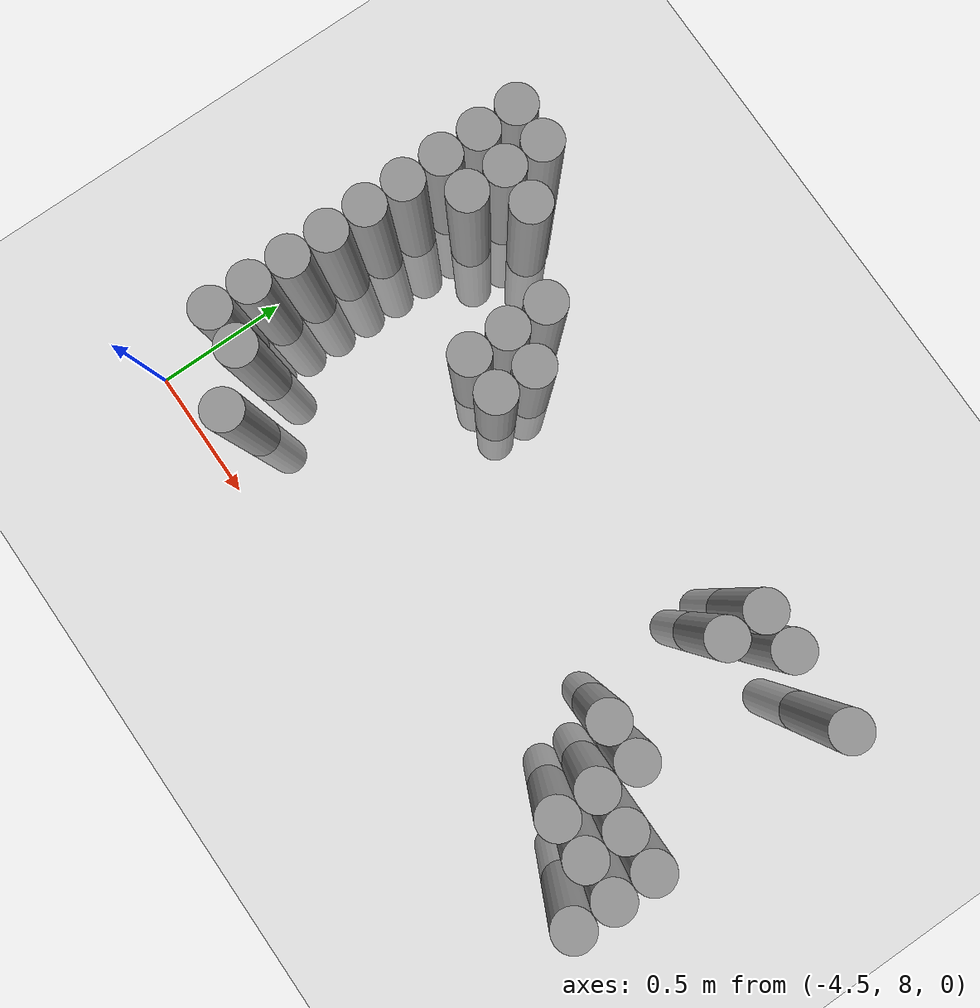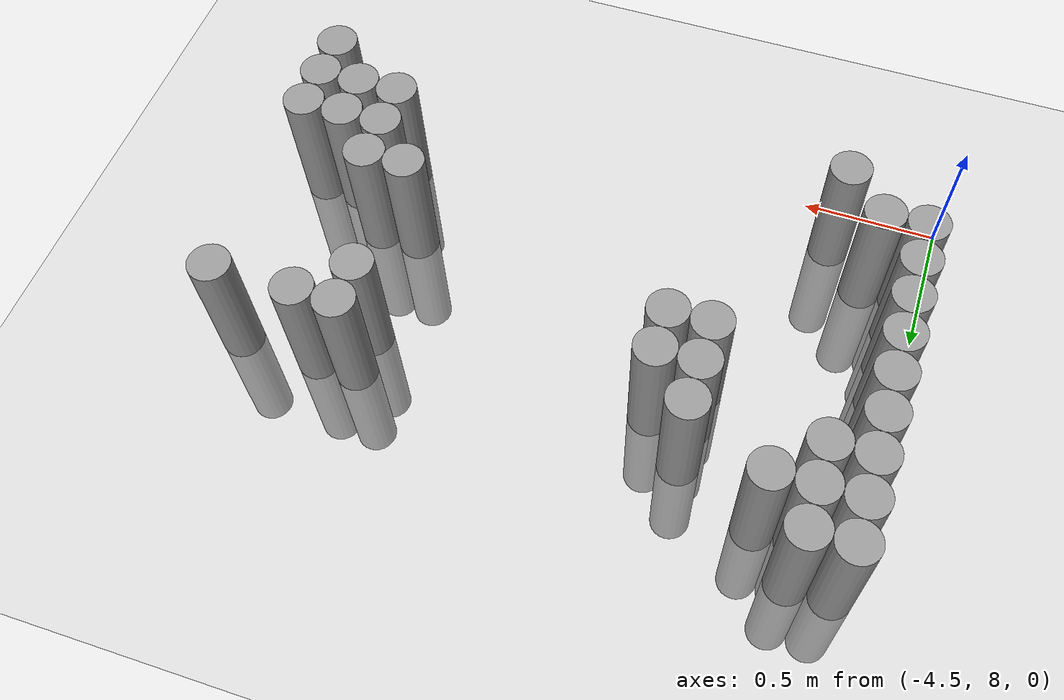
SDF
<sdf version="1.6">
 <world name="default">
  <model name="ground_plane">
   <static>1</static>
   <link name="link">
    <collision name="collision">
     <geometry><plane><normal>0 0 1</normal><size>100 100</size></plane></geometry>
     <surface><friction><ode><mu>100</mu><mu2>50</mu2></ode></friction></surface>
    </collision>
    <visual name="visual">
     <cast_shadows>0</cast_shadows>
     <geometry><plane><normal>0 0 1</normal><size>100 100</size></plane></geometry>
     <material>
      <script><uri>file://media/materials/scripts/gazebo.material</uri><name>Gazebo/Grey</name></script>
     </material>
    </visual>
   </link>
  </model>
  <model name="unit_cylinder_117">
   <pose>-4.425000 8.325000 0.000000 0.000000 0.000000 0.000000</pose>
   <link name="link">
    <inertial>
     <mass>1</mass>
     <inertia><ixx>0.145833</ixx><ixy>0</ixy><ixz>0</ixz><iyy>0.145833</iyy><iyz>0</iyz><izz>0.125</izz></inertia>
    </inertial>
    <collision name="collision">
     <geometry><cylinder><radius>0.075000</radius><length>1</length></cylinder></geometry>
    </collision>
    <visual name="visual">
     <geometry><cylinder><radius>0.075000</radius><length>1</length></cylinder></geometry>
     <material>
      <script><name>Gazebo/Grey</name><uri>file://media/materials/scripts/gazebo.material</uri></script>
     </material>
    </visual>
   </link>
  </model>
  <model name="unit_cylinder_118">
   <pose>-4.425000 8.475000 0.000000 0.000000 0.000000 0.000000</pose>
   <link name="link">
    <inertial>
     <mass>1</mass>
     <inertia><ixx>0.145833</ixx><ixy>0</ixy><ixz>0</ixz><iyy>0.145833</iyy><iyz>0</iyz><izz>0.125</izz></inertia>
    </inertial>
    <collision name="collision">
     <geometry><cylinder><radius>0.075000</radius><length>1</length></cylinder></geometry>
    </collision>
    <visual name="visual">
     <geometry><cylinder><radius>0.075000</radius><length>1</length></cylinder></geometry>
     <material>
      <script><name>Gazebo/Grey</name><uri>file://media/materials/scripts/gazebo.material</uri></script>
     </material>
    </visual>
   </link>
  </model>
  <model name="unit_cylinder_119">
   <pose>-4.425000 8.625000 0.000000 0.000000 0.000000 0.000000</pose>
   <link name="link">
    <inertial>
     <mass>1</mass>
     <inertia><ixx>0.145833</ixx><ixy>0</ixy><ixz>0</ixz><iyy>0.145833</iyy><iyz>0</iyz><izz>0.125</izz></inertia>
    </inertial>
    <collision name="collision">
     <geometry><cylinder><radius>0.075000</radius><length>1</length></cylinder></geometry>
    </collision>
    <visual name="visual">
     <geometry><cylinder><radius>0.075000</radius><length>1</length></cylinder></geometry>
     <material>
      <script><name>Gazebo/Grey</name><uri>file://media/materials/scripts/gazebo.material</uri></script>
     </material>
    </visual>
   </link>
  </model>
  <model name="unit_cylinder_120">
   <pose>-4.425000 8.775000 0.000000 0.000000 0.000000 0.000000</pose>
   <link name="link">
    <inertial>
     <mass>1</mass>
     <inertia><ixx>0.145833</ixx><ixy>0</ixy><ixz>0</ixz><iyy>0.145833</iyy><iyz>0</iyz><izz>0.125</izz></inertia>
    </inertial>
    <collision name="collision">
     <geometry><cylinder><radius>0.075000</radius><length>1</length></cylinder></geometry>
    </collision>
    <visual name="visual">
     <geometry><cylinder><radius>0.075000</radius><length>1</length></cylinder></geometry>
     <material>
      <script><name>Gazebo/Grey</name><uri>file://media/materials/scripts/gazebo.material</uri></script>
     </material>
    </visual>
   </link>
  </model>
  <model name="unit_cylinder_121">
   <pose>-4.425000 8.925000 0.000000 0.000000 0.000000 0.000000</pose>
   <link name="link">
    <inertial>
     <mass>1</mass>
     <inertia><ixx>0.145833</ixx><ixy>0</ixy><ixz>0</ixz><iyy>0.145833</iyy><iyz>0</iyz><izz>0.125</izz></inertia>
    </inertial>
    <collision name="collision">
     <geometry><cylinder><radius>0.075000</radius><length>1</length></cylinder></geometry>
    </collision>
    <visual name="visual">
     <geometry><cylinder><radius>0.075000</radius><length>1</length></cylinder></geometry>
     <material>
      <script><name>Gazebo/Grey</name><uri>file://media/materials/scripts/gazebo.material</uri></script>
     </material>
    </visual>
   </link>
  </model>
  <model name="unit_cylinder_122">
   <pose>-4.425000 9.075000 0.000000 0.000000 0.000000 0.000000</pose>
   <link name="link">
    <inertial>
     <mass>1</mass>
     <inertia><ixx>0.145833</ixx><ixy>0</ixy><ixz>0</ixz><iyy>0.145833</iyy><iyz>0</iyz><izz>0.125</izz></inertia>
    </inertial>
    <collision name="collision">
     <geometry><cylinder><radius>0.075000</radius><length>1</length></cylinder></geometry>
    </collision>
    <visual name="visual">
     <geometry><cylinder><radius>0.075000</radius><length>1</length></cylinder></geometry>
     <material>
      <script><name>Gazebo/Grey</name><uri>file://media/materials/scripts/gazebo.material</uri></script>
     </material>
    </visual>
   </link>
  </model>
  <model name="unit_cylinder_123">
   <pose>-4.425000 9.225000 0.000000 0.000000 0.000000 0.000000</pose>
   <link name="link">
    <inertial>
     <mass>1</mass>
     <inertia><ixx>0.145833</ixx><ixy>0</ixy><ixz>0</ixz><iyy>0.145833</iyy><iyz>0</iyz><izz>0.125</izz></inertia>
    </inertial>
    <collision name="collision">
     <geometry><cylinder><radius>0.075000</radius><length>1</length></cylinder></geometry>
    </collision>
    <visual name="visual">
     <geometry><cylinder><radius>0.075000</radius><length>1</length></cylinder></geometry>
     <material>
      <script><name>Gazebo/Grey</name><uri>file://media/materials/scripts/gazebo.material</uri></script>
     </material>
    </visual>
   </link>
  </model>
  <model name="unit_cylinder_124">
   <pose>-4.425000 9.375000 0.000000 0.000000 0.000000 0.000000</pose>
   <link name="link">
    <inertial>
     <mass>1</mass>
     <inertia><ixx>0.145833</ixx><ixy>0</ixy><ixz>0</ixz><iyy>0.145833</iyy><iyz>0</iyz><izz>0.125</izz></inertia>
    </inertial>
    <collision name="collision">
     <geometry><cylinder><radius>0.075000</radius><length>1</length></cylinder></geometry>
    </collision>
    <visual name="visual">
     <geometry><cylinder><radius>0.075000</radius><length>1</length></cylinder></geometry>
     <material>
      <script><name>Gazebo/Grey</name><uri>file://media/materials/scripts/gazebo.material</uri></script>
     </material>
    </visual>
   </link>
  </model>
  <model name="unit_cylinder_125">
   <pose>-4.425000 9.525000 0.000000 0.000000 0.000000 0.000000</pose>
   <link name="link">
    <inertial>
     <mass>1</mass>
     <inertia><ixx>0.145833</ixx><ixy>0</ixy><ixz>0</ixz><iyy>0.145833</iyy><iyz>0</iyz><izz>0.125</izz></inertia>
    </inertial>
    <collision name="collision">
     <geometry><cylinder><radius>0.075000</radius><length>1</length></cylinder></geometry>
    </collision>
    <visual name="visual">
     <geometry><cylinder><radius>0.075000</radius><length>1</length></cylinder></geometry>
     <material>
      <script><name>Gazebo/Grey</name><uri>file://media/materials/scripts/gazebo.material</uri></script>
     </material>
    </visual>
   </link>
  </model>
  <model name="unit_cylinder_136">
   <pose>-4.275000 8.325000 0.000000 0.000000 0.000000 0.000000</pose>
   <link name="link">
    <inertial>
     <mass>1</mass>
     <inertia><ixx>0.145833</ixx><ixy>0</ixy><ixz>0</ixz><iyy>0.145833</iyy><iyz>0</iyz><izz>0.125</izz></inertia>
    </inertial>
    <collision name="collision">
     <geometry><cylinder><radius>0.075000</radius><length>1</length></cylinder></geometry>
    </collision>
    <visual name="visual">
     <geometry><cylinder><radius>0.075000</radius><length>1</length></cylinder></geometry>
     <material>
      <script><name>Gazebo/Grey</name><uri>file://media/materials/scripts/gazebo.material</uri></script>
     </material>
    </visual>
   </link>
  </model>
  <model name="unit_cylinder_137">
   <pose>-4.275000 9.225000 0.000000 0.000000 0.000000 0.000000</pose>
   <link name="link">
    <inertial>
     <mass>1</mass>
     <inertia><ixx>0.145833</ixx><ixy>0</ixy><ixz>0</ixz><iyy>0.145833</iyy><iyz>0</iyz><izz>0.125</izz></inertia>
    </inertial>
    <collision name="collision">
     <geometry><cylinder><radius>0.075000</radius><length>1</length></cylinder></geometry>
    </collision>
    <visual name="visual">
     <geometry><cylinder><radius>0.075000</radius><length>1</length></cylinder></geometry>
     <material>
      <script><name>Gazebo/Grey</name><uri>file://media/materials/scripts/gazebo.material</uri></script>
     </material>
    </visual>
   </link>
  </model>
  <model name="unit_cylinder_138">
   <pose>-4.275000 9.375000 0.000000 0.000000 0.000000 0.000000</pose>
   <link name="link">
    <inertial>
     <mass>1</mass>
     <inertia><ixx>0.145833</ixx><ixy>0</ixy><ixz>0</ixz><iyy>0.145833</iyy><iyz>0</iyz><izz>0.125</izz></inertia>
    </inertial>
    <collision name="collision">
     <geometry><cylinder><radius>0.075000</radius><length>1</length></cylinder></geometry>
    </collision>
    <visual name="visual">
     <geometry><cylinder><radius>0.075000</radius><length>1</length></cylinder></geometry>
     <material>
      <script><name>Gazebo/Grey</name><uri>file://media/materials/scripts/gazebo.material</uri></script>
     </material>
    </visual>
   </link>
  </model>
  <model name="unit_cylinder_139">
   <pose>-4.275000 9.525000 0.000000 0.000000 0.000000 0.000000</pose>
   <link name="link">
    <inertial>
     <mass>1</mass>
     <inertia><ixx>0.145833</ixx><ixy>0</ixy><ixz>0</ixz><iyy>0.145833</iyy><iyz>0</iyz><izz>0.125</izz></inertia>
    </inertial>
    <collision name="collision">
     <geometry><cylinder><radius>0.075000</radius><length>1</length></cylinder></geometry>
    </collision>
    <visual name="visual">
     <geometry><cylinder><radius>0.075000</radius><length>1</length></cylinder></geometry>
     <material>
      <script><name>Gazebo/Grey</name><uri>file://media/materials/scripts/gazebo.material</uri></script>
     </material>
    </visual>
   </link>
  </model>
  <model name="unit_cylinder_143">
   <pose>-4.125000 8.175000 0.000000 0.000000 0.000000 0.000000</pose>
   <link name="link">
    <inertial>
     <mass>1</mass>
     <inertia><ixx>0.145833</ixx><ixy>0</ixy><ixz>0</ixz><iyy>0.145833</iyy><iyz>0</iyz><izz>0.125</izz></inertia>
    </inertial>
    <collision name="collision">
     <geometry><cylinder><radius>0.075000</radius><length>1</length></cylinder></geometry>
    </collision>
    <visual name="visual">
     <geometry><cylinder><radius>0.075000</radius><length>1</length></cylinder></geometry>
     <material>
      <script><name>Gazebo/Grey</name><uri>file://media/materials/scripts/gazebo.material</uri></script>
     </material>
    </visual>
   </link>
  </model>
  <model name="unit_cylinder_144">
   <pose>-4.125000 9.375000 0.000000 0.000000 0.000000 0.000000</pose>
   <link name="link">
    <inertial>
     <mass>1</mass>
     <inertia><ixx>0.145833</ixx><ixy>0</ixy><ixz>0</ixz><iyy>0.145833</iyy><iyz>0</iyz><izz>0.125</izz></inertia>
    </inertial>
    <collision name="collision">
     <geometry><cylinder><radius>0.075000</radius><length>1</length></cylinder></geometry>
    </collision>
    <visual name="visual">
     <geometry><cylinder><radius>0.075000</radius><length>1</length></cylinder></geometry>
     <material>
      <script><name>Gazebo/Grey</name><uri>file://media/materials/scripts/gazebo.material</uri></script>
     </material>
    </visual>
   </link>
  </model>
  <model name="unit_cylinder_149">
   <pose>-3.825000 8.925000 0.000000 0.000000 0.000000 0.000000</pose>
   <link name="link">
    <inertial>
     <mass>1</mass>
     <inertia><ixx>0.145833</ixx><ixy>0</ixy><ixz>0</ixz><iyy>0.145833</iyy><iyz>0</iyz><izz>0.125</izz></inertia>
    </inertial>
    <collision name="collision">
     <geometry><cylinder><radius>0.075000</radius><length>1</length></cylinder></geometry>
    </collision>
    <visual name="visual">
     <geometry><cylinder><radius>0.075000</radius><length>1</length></cylinder></geometry>
     <material>
      <script><name>Gazebo/Grey</name><uri>file://media/materials/scripts/gazebo.material</uri></script>
     </material>
    </visual>
   </link>
  </model>
  <model name="unit_cylinder_150">
   <pose>-3.825000 9.075000 0.000000 0.000000 0.000000 0.000000</pose>
   <link name="link">
    <inertial>
     <mass>1</mass>
     <inertia><ixx>0.145833</ixx><ixy>0</ixy><ixz>0</ixz><iyy>0.145833</iyy><iyz>0</iyz><izz>0.125</izz></inertia>
    </inertial>
    <collision name="collision">
     <geometry><cylinder><radius>0.075000</radius><length>1</length></cylinder></geometry>
    </collision>
    <visual name="visual">
     <geometry><cylinder><radius>0.075000</radius><length>1</length></cylinder></geometry>
     <material>
      <script><name>Gazebo/Grey</name><uri>file://media/materials/scripts/gazebo.material</uri></script>
     </material>
    </visual>
   </link>
  </model>
  <model name="unit_cylinder_151">
   <pose>-3.825000 9.225000 0.000000 0.000000 0.000000 0.000000</pose>
   <link name="link">
    <inertial>
     <mass>1</mass>
     <inertia><ixx>0.145833</ixx><ixy>0</ixy><ixz>0</ixz><iyy>0.145833</iyy><iyz>0</iyz><izz>0.125</izz></inertia>
    </inertial>
    <collision name="collision">
     <geometry><cylinder><radius>0.075000</radius><length>1</length></cylinder></geometry>
    </collision>
    <visual name="visual">
     <geometry><cylinder><radius>0.075000</radius><length>1</length></cylinder></geometry>
     <material>
      <script><name>Gazebo/Grey</name><uri>file://media/materials/scripts/gazebo.material</uri></script>
     </material>
    </visual>
   </link>
  </model>
  <model name="unit_cylinder_152">
   <pose>-3.675000 8.925000 0.000000 0.000000 0.000000 0.000000</pose>
   <link name="link">
    <inertial>
     <mass>1</mass>
     <inertia><ixx>0.145833</ixx><ixy>0</ixy><ixz>0</ixz><iyy>0.145833</iyy><iyz>0</iyz><izz>0.125</izz></inertia>
    </inertial>
    <collision name="collision">
     <geometry><cylinder><radius>0.075000</radius><length>1</length></cylinder></geometry>
    </collision>
    <visual name="visual">
     <geometry><cylinder><radius>0.075000</radius><length>1</length></cylinder></geometry>
     <material>
      <script><name>Gazebo/Grey</name><uri>file://media/materials/scripts/gazebo.material</uri></script>
     </material>
    </visual>
   </link>
  </model>
  <model name="unit_cylinder_153">
   <pose>-3.675000 9.075000 0.000000 0.000000 0.000000 0.000000</pose>
   <link name="link">
    <inertial>
     <mass>1</mass>
     <inertia><ixx>0.145833</ixx><ixy>0</ixy><ixz>0</ixz><iyy>0.145833</iyy><iyz>0</iyz><izz>0.125</izz></inertia>
    </inertial>
    <collision name="collision">
     <geometry><cylinder><radius>0.075000</radius><length>1</length></cylinder></geometry>
    </collision>
    <visual name="visual">
     <geometry><cylinder><radius>0.075000</radius><length>1</length></cylinder></geometry>
     <material>
      <script><name>Gazebo/Grey</name><uri>file://media/materials/scripts/gazebo.material</uri></script>
     </material>
    </visual>
   </link>
  </model>
  <model name="unit_cylinder_159">
   <pose>-2.625000 8.625000 0.000000 0.000000 0.000000 0.000000</pose>
   <link name="link">
    <inertial>
     <mass>1</mass>
     <inertia><ixx>0.145833</ixx><ixy>0</ixy><ixz>0</ixz><iyy>0.145833</iyy><iyz>0</iyz><izz>0.125</izz></inertia>
    </inertial>
    <collision name="collision">
     <geometry><cylinder><radius>0.075000</radius><length>1</length></cylinder></geometry>
    </collision>
    <visual name="visual">
     <geometry><cylinder><radius>0.075000</radius><length>1</length></cylinder></geometry>
     <material>
      <script><name>Gazebo/Grey</name><uri>file://media/materials/scripts/gazebo.material</uri></script>
     </material>
    </visual>
   </link>
  </model>
  <model name="unit_cylinder_160">
   <pose>-2.625000 9.075000 0.000000 0.000000 0.000000 0.000000</pose>
   <link name="link">
    <inertial>
     <mass>1</mass>
     <inertia><ixx>0.145833</ixx><ixy>0</ixy><ixz>0</ixz><iyy>0.145833</iyy><iyz>0</iyz><izz>0.125</izz></inertia>
    </inertial>
    <collision name="collision">
     <geometry><cylinder><radius>0.075000</radius><length>1</length></cylinder></geometry>
    </collision>
    <visual name="visual">
     <geometry><cylinder><radius>0.075000</radius><length>1</length></cylinder></geometry>
     <material>
      <script><name>Gazebo/Grey</name><uri>file://media/materials/scripts/gazebo.material</uri></script>
     </material>
    </visual>
   </link>
  </model>
  <model name="unit_cylinder_161">
   <pose>-2.625000 9.225000 0.000000 0.000000 0.000000 0.000000</pose>
   <link name="link">
    <inertial>
     <mass>1</mass>
     <inertia><ixx>0.145833</ixx><ixy>0</ixy><ixz>0</ixz><iyy>0.145833</iyy><iyz>0</iyz><izz>0.125</izz></inertia>
    </inertial>
    <collision name="collision">
     <geometry><cylinder><radius>0.075000</radius><length>1</length></cylinder></geometry>
    </collision>
    <visual name="visual">
     <geometry><cylinder><radius>0.075000</radius><length>1</length></cylinder></geometry>
     <material>
      <script><name>Gazebo/Grey</name><uri>file://media/materials/scripts/gazebo.material</uri></script>
     </material>
    </visual>
   </link>
  </model>
  <model name="unit_cylinder_165">
   <pose>-2.475000 8.325000 0.000000 0.000000 0.000000 0.000000</pose>
   <link name="link">
    <inertial>
     <mass>1</mass>
     <inertia><ixx>0.145833</ixx><ixy>0</ixy><ixz>0</ixz><iyy>0.145833</iyy><iyz>0</iyz><izz>0.125</izz></inertia>
    </inertial>
    <collision name="collision">
     <geometry><cylinder><radius>0.075000</radius><length>1</length></cylinder></geometry>
    </collision>
    <visual name="visual">
     <geometry><cylinder><radius>0.075000</radius><length>1</length></cylinder></geometry>
     <material>
      <script><name>Gazebo/Grey</name><uri>file://media/materials/scripts/gazebo.material</uri></script>
     </material>
    </visual>
   </link>
  </model>
  <model name="unit_cylinder_166">
   <pose>-2.475000 8.475000 0.000000 0.000000 0.000000 0.000000</pose>
   <link name="link">
    <inertial>
     <mass>1</mass>
     <inertia><ixx>0.145833</ixx><ixy>0</ixy><ixz>0</ixz><iyy>0.145833</iyy><iyz>0</iyz><izz>0.125</izz></inertia>
    </inertial>
    <collision name="collision">
     <geometry><cylinder><radius>0.075000</radius><length>1</length></cylinder></geometry>
    </collision>
    <visual name="visual">
     <geometry><cylinder><radius>0.075000</radius><length>1</length></cylinder></geometry>
     <material>
      <script><name>Gazebo/Grey</name><uri>file://media/materials/scripts/gazebo.material</uri></script>
     </material>
    </visual>
   </link>
  </model>
  <model name="unit_cylinder_167">
   <pose>-2.475000 8.625000 0.000000 0.000000 0.000000 0.000000</pose>
   <link name="link">
    <inertial>
     <mass>1</mass>
     <inertia><ixx>0.145833</ixx><ixy>0</ixy><ixz>0</ixz><iyy>0.145833</iyy><iyz>0</iyz><izz>0.125</izz></inertia>
    </inertial>
    <collision name="collision">
     <geometry><cylinder><radius>0.075000</radius><length>1</length></cylinder></geometry>
    </collision>
    <visual name="visual">
     <geometry><cylinder><radius>0.075000</radius><length>1</length></cylinder></geometry>
     <material>
      <script><name>Gazebo/Grey</name><uri>file://media/materials/scripts/gazebo.material</uri></script>
     </material>
    </visual>
   </link>
  </model>
  <model name="unit_cylinder_168">
   <pose>-2.475000 9.225000 0.000000 0.000000 0.000000 0.000000</pose>
   <link name="link">
    <inertial>
     <mass>1</mass>
     <inertia><ixx>0.145833</ixx><ixy>0</ixy><ixz>0</ixz><iyy>0.145833</iyy><iyz>0</iyz><izz>0.125</izz></inertia>
    </inertial>
    <collision name="collision">
     <geometry><cylinder><radius>0.075000</radius><length>1</length></cylinder></geometry>
    </collision>
    <visual name="visual">
     <geometry><cylinder><radius>0.075000</radius><length>1</length></cylinder></geometry>
     <material>
      <script><name>Gazebo/Grey</name><uri>file://media/materials/scripts/gazebo.material</uri></script>
     </material>
    </visual>
   </link>
  </model>
  <model name="unit_cylinder_171">
   <pose>-2.325000 8.325000 0.000000 0.000000 0.000000 0.000000</pose>
   <link name="link">
    <inertial>
     <mass>1</mass>
     <inertia><ixx>0.145833</ixx><ixy>0</ixy><ixz>0</ixz><iyy>0.145833</iyy><iyz>0</iyz><izz>0.125</izz></inertia>
    </inertial>
    <collision name="collision">
     <geometry><cylinder><radius>0.075000</radius><length>1</length></cylinder></geometry>
    </collision>
    <visual name="visual">
     <geometry><cylinder><radius>0.075000</radius><length>1</length></cylinder></geometry>
     <material>
      <script><name>Gazebo/Grey</name><uri>file://media/materials/scripts/gazebo.material</uri></script>
     </material>
    </visual>
   </link>
  </model>
  <model name="unit_cylinder_172">
   <pose>-2.325000 8.475000 0.000000 0.000000 0.000000 0.000000</pose>
   <link name="link">
    <inertial>
     <mass>1</mass>
     <inertia><ixx>0.145833</ixx><ixy>0</ixy><ixz>0</ixz><iyy>0.145833</iyy><iyz>0</iyz><izz>0.125</izz></inertia>
    </inertial>
    <collision name="collision">
     <geometry><cylinder><radius>0.075000</radius><length>1</length></cylinder></geometry>
    </collision>
    <visual name="visual">
     <geometry><cylinder><radius>0.075000</radius><length>1</length></cylinder></geometry>
     <material>
      <script><name>Gazebo/Grey</name><uri>file://media/materials/scripts/gazebo.material</uri></script>
     </material>
    </visual>
   </link>
  </model>
  <model name="unit_cylinder_175">
   <pose>-2.175000 8.175000 0.000000 0.000000 0.000000 0.000000</pose>
   <link name="link">
    <inertial>
     <mass>1</mass>
     <inertia><ixx>0.145833</ixx><ixy>0</ixy><ixz>0</ixz><iyy>0.145833</iyy><iyz>0</iyz><izz>0.125</izz></inertia>
    </inertial>
    <collision name="collision">
     <geometry><cylinder><radius>0.075000</radius><length>1</length></cylinder></geometry>
    </collision>
    <visual name="visual">
     <geometry><cylinder><radius>0.075000</radius><length>1</length></cylinder></geometry>
     <material>
      <script><name>Gazebo/Grey</name><uri>file://media/materials/scripts/gazebo.material</uri></script>
     </material>
    </visual>
   </link>
  </model>
  <model name="unit_cylinder_176">
   <pose>-2.175000 8.325000 0.000000 0.000000 0.000000 0.000000</pose>
   <link name="link">
    <inertial>
     <mass>1</mass>
     <inertia><ixx>0.145833</ixx><ixy>0</ixy><ixz>0</ixz><iyy>0.145833</iyy><iyz>0</iyz><izz>0.125</izz></inertia>
    </inertial>
    <collision name="collision">
     <geometry><cylinder><radius>0.075000</radius><length>1</length></cylinder></geometry>
    </collision>
    <visual name="visual">
     <geometry><cylinder><radius>0.075000</radius><length>1</length></cylinder></geometry>
     <material>
      <script><name>Gazebo/Grey</name><uri>file://media/materials/scripts/gazebo.material</uri></script>
     </material>
    </visual>
   </link>
  </model>
  <model name="unit_cylinder_177">
   <pose>-2.175000 8.475000 0.000000 0.000000 0.000000 0.000000</pose>
   <link name="link">
    <inertial>
     <mass>1</mass>
     <inertia><ixx>0.145833</ixx><ixy>0</ixy><ixz>0</ixz><iyy>0.145833</iyy><iyz>0</iyz><izz>0.125</izz></inertia>
    </inertial>
    <collision name="collision">
     <geometry><cylinder><radius>0.075000</radius><length>1</length></cylinder></geometry>
    </collision>
    <visual name="visual">
     <geometry><cylinder><radius>0.075000</radius><length>1</length></cylinder></geometry>
     <material>
      <script><name>Gazebo/Grey</name><uri>file://media/materials/scripts/gazebo.material</uri></script>
     </material>
    </visual>
   </link>
  </model>
  <model name="unit_cylinder_178">
   <pose>-2.175000 9.225000 0.000000 0.000000 0.000000 0.000000</pose>
   <link name="link">
    <inertial>
     <mass>1</mass>
     <inertia><ixx>0.145833</ixx><ixy>0</ixy><ixz>0</ixz><iyy>0.145833</iyy><iyz>0</iyz><izz>0.125</izz></inertia>
    </inertial>
    <collision name="collision">
     <geometry><cylinder><radius>0.075000</radius><length>1</length></cylinder></geometry>
    </collision>
    <visual name="visual">
     <geometry><cylinder><radius>0.075000</radius><length>1</length></cylinder></geometry>
     <material>
      <script><name>Gazebo/Grey</name><uri>file://media/materials/scripts/gazebo.material</uri></script>
     </material>
    </visual>
   </link>
  </model>
 </world>
</sdf>
